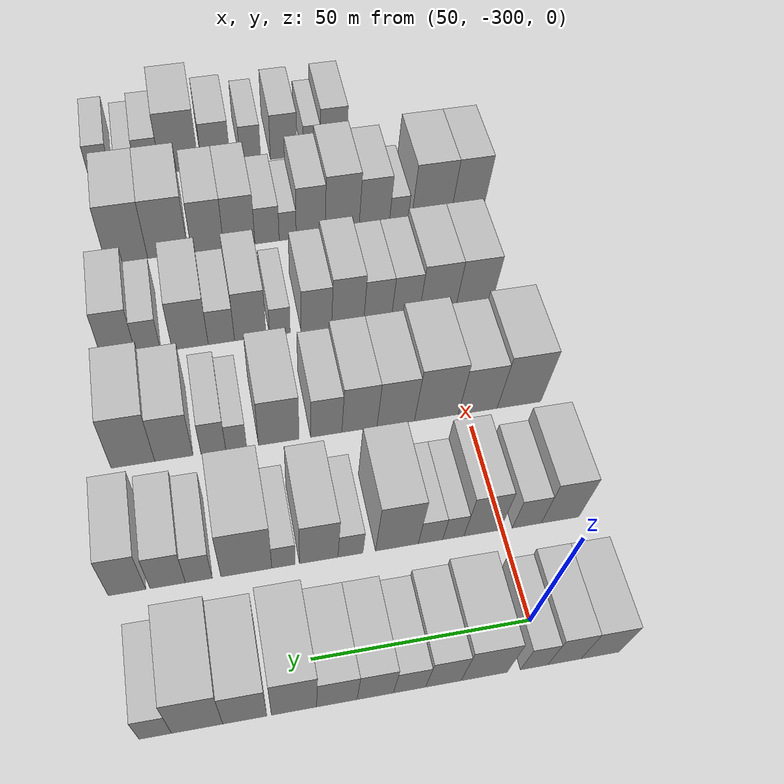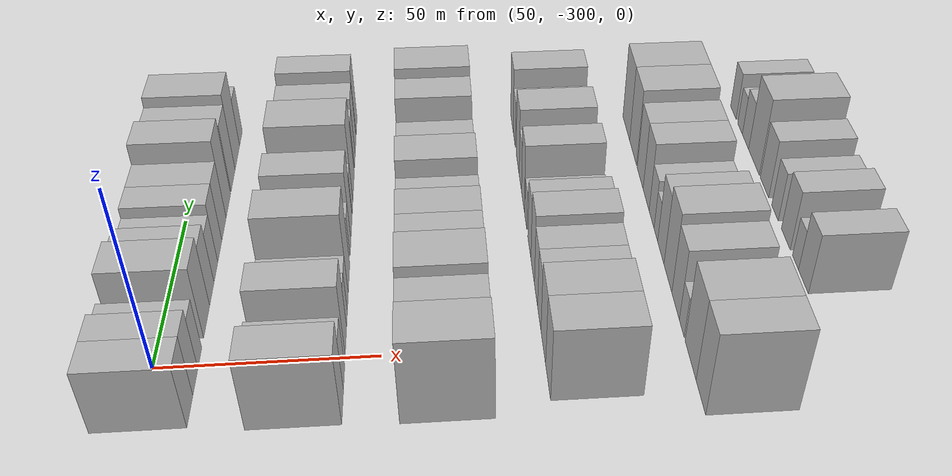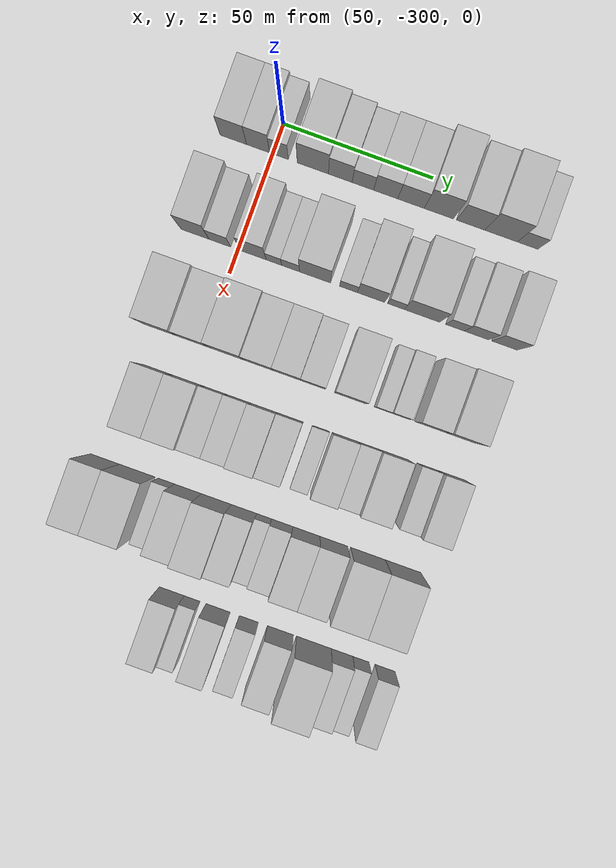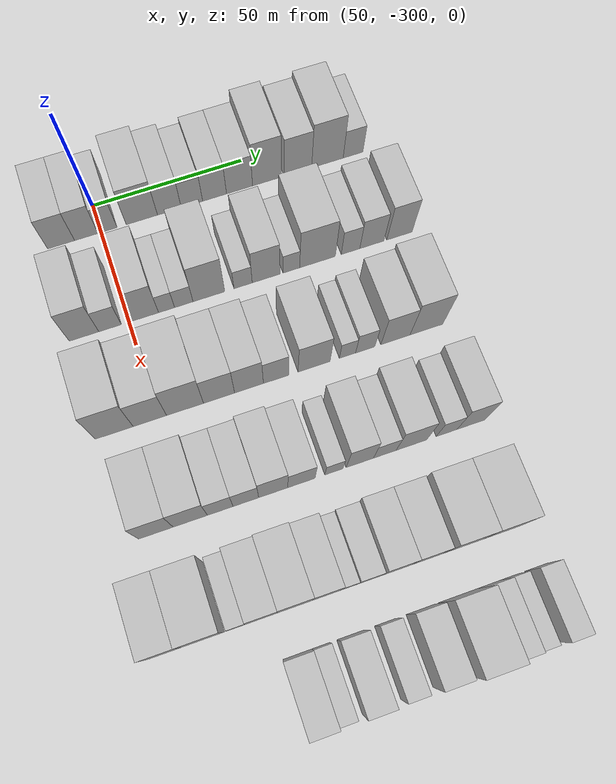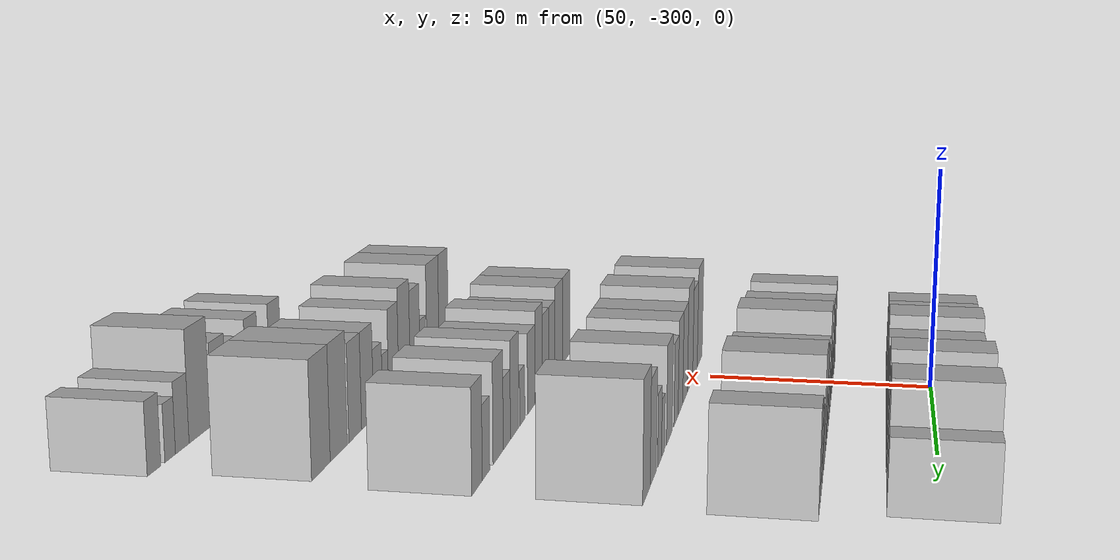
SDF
<sdf version="1.6">
 <world name="default">
  <model name="building_26">
   <static>1</static>
   <pose>50.0000 -313.0401 0 0.000000 0.000000 0.000000</pose>
   <link name="link">
    <pose>0 0 9.00 0 0 0</pose>
    <collision name="collision"><geometry><box><size>20.0000 8.7914 18.0000</size></box></geometry></collision>
    <visual name="visual">
     <cast_shadows>0</cast_shadows>
     <geometry><box><size>20.0000 8.7914 18.0000</size></box></geometry>
     <material>
      <script>
       <uri>model://HANNAS_wall/materials/scripts</uri>
       <uri>model://HANNAS_wall/materials/textures</uri>
       <name>vrc/HANNAS_wall</name>
      </script>
     </material>
    </visual>
   </link>
  </model>
  <model name="building_27">
   <static>1</static>
   <pose>50.0000 -304.8057 0 0.000000 0.000000 0.000000</pose>
   <link name="link">
    <pose>0 0 9.00 0 0 0</pose>
    <collision name="collision"><geometry><box><size>20.0000 7.6775 18.0000</size></box></geometry></collision>
    <visual name="visual">
     <cast_shadows>0</cast_shadows>
     <geometry><box><size>20.0000 7.6775 18.0000</size></box></geometry>
     <material>
      <script>
       <uri>model://HANNAS_wall/materials/scripts</uri>
       <uri>model://HANNAS_wall/materials/textures</uri>
       <name>vrc/HANNAS_wall</name>
      </script>
     </material>
    </visual>
   </link>
  </model>
  <model name="building_28">
   <static>1</static>
   <pose>50.0000 -297.8508 0 0.000000 0.000000 0.000000</pose>
   <link name="link">
    <pose>0 0 7.50 0 0 0</pose>
    <collision name="collision"><geometry><box><size>20.0000 6.2323 15.0000</size></box></geometry></collision>
    <visual name="visual">
     <cast_shadows>0</cast_shadows>
     <geometry><box><size>20.0000 6.2323 15.0000</size></box></geometry>
     <material>
      <script>
       <uri>model://HANNAS_wall/materials/scripts</uri>
       <uri>model://HANNAS_wall/materials/textures</uri>
       <name>vrc/HANNAS_wall</name>
      </script>
     </material>
    </visual>
   </link>
  </model>
  <model name="building_29">
   <static>1</static>
   <pose>50.0000 -286.5448 0 0.000000 0.000000 0.000000</pose>
   <link name="link">
    <pose>0 0 10.50 0 0 0</pose>
    <collision name="collision"><geometry><box><size>20.0000 10.3797 21.0000</size></box></geometry></collision>
    <visual name="visual">
     <cast_shadows>0</cast_shadows>
     <geometry><box><size>20.0000 10.3797 21.0000</size></box></geometry>
     <material>
      <script>
       <uri>model://HANNAS_wall/materials/scripts</uri>
       <uri>model://HANNAS_wall/materials/textures</uri>
       <name>vrc/HANNAS_wall</name>
      </script>
     </material>
    </visual>
   </link>
  </model>
  <model name="building_30">
   <static>1</static>
   <pose>50.0000 -277.3903 0 0.000000 0.000000 0.000000</pose>
   <link name="link">
    <pose>0 0 9.00 0 0 0</pose>
    <collision name="collision"><geometry><box><size>20.0000 7.9294 18.0000</size></box></geometry></collision>
    <visual name="visual">
     <cast_shadows>0</cast_shadows>
     <geometry><box><size>20.0000 7.9294 18.0000</size></box></geometry>
     <material>
      <script>
       <uri>model://HANNAS_wall/materials/scripts</uri>
       <uri>model://HANNAS_wall/materials/textures</uri>
       <name>vrc/HANNAS_wall</name>
      </script>
     </material>
    </visual>
   </link>
  </model>
  <model name="building_31">
   <static>1</static>
   <pose>50.0000 -269.8469 0 0.000000 0.000000 0.000000</pose>
   <link name="link">
    <pose>0 0 7.50 0 0 0</pose>
    <collision name="collision"><geometry><box><size>20.0000 7.1575 15.0000</size></box></geometry></collision>
    <visual name="visual">
     <cast_shadows>0</cast_shadows>
     <geometry><box><size>20.0000 7.1575 15.0000</size></box></geometry>
     <material>
      <script>
       <uri>model://HANNAS_wall/materials/scripts</uri>
       <uri>model://HANNAS_wall/materials/textures</uri>
       <name>vrc/HANNAS_wall</name>
      </script>
     </material>
    </visual>
   </link>
  </model>
  <model name="building_32">
   <static>1</static>
   <pose>50.0000 -262.2515 0 0.000000 0.000000 0.000000</pose>
   <link name="link">
    <pose>0 0 9.00 0 0 0</pose>
    <collision name="collision"><geometry><box><size>20.0000 8.0332 18.0000</size></box></geometry></collision>
    <visual name="visual">
     <cast_shadows>0</cast_shadows>
     <geometry><box><size>20.0000 8.0332 18.0000</size></box></geometry>
     <material>
      <script>
       <uri>model://HANNAS_wall/materials/scripts</uri>
       <uri>model://HANNAS_wall/materials/textures</uri>
       <name>vrc/HANNAS_wall</name>
      </script>
     </material>
    </visual>
   </link>
  </model>
  <model name="building_33">
   <static>1</static>
   <pose>50.0000 -253.8243 0 0.000000 0.000000 0.000000</pose>
   <link name="link">
    <pose>0 0 9.00 0 0 0</pose>
    <collision name="collision"><geometry><box><size>20.0000 8.8211 18.0000</size></box></geometry></collision>
    <visual name="visual">
     <cast_shadows>0</cast_shadows>
     <geometry><box><size>20.0000 8.8211 18.0000</size></box></geometry>
     <material>
      <script>
       <uri>model://HANNAS_wall/materials/scripts</uri>
       <uri>model://HANNAS_wall/materials/textures</uri>
       <name>vrc/HANNAS_wall</name>
      </script>
     </material>
    </visual>
   </link>
  </model>
  <model name="building_34">
   <static>1</static>
   <pose>50.0000 -244.5286 0 0.000000 0.000000 0.000000</pose>
   <link name="link">
    <pose>0 0 12.00 0 0 0</pose>
    <collision name="collision"><geometry><box><size>20.0000 9.7702 24.0000</size></box></geometry></collision>
    <visual name="visual">
     <cast_shadows>0</cast_shadows>
     <geometry><box><size>20.0000 9.7702 24.0000</size></box></geometry>
     <material>
      <script>
       <uri>model://HANNAS_wall/materials/scripts</uri>
       <uri>model://HANNAS_wall/materials/textures</uri>
       <name>vrc/HANNAS_wall</name>
      </script>
     </material>
    </visual>
   </link>
  </model>
  <model name="building_35">
   <static>1</static>
   <pose>50.0000 -233.9191 0 0.000000 0.000000 0.000000</pose>
   <link name="link">
    <pose>0 0 10.50 0 0 0</pose>
    <collision name="collision"><geometry><box><size>20.0000 9.4488 21.0000</size></box></geometry></collision>
    <visual name="visual">
     <cast_shadows>0</cast_shadows>
     <geometry><box><size>20.0000 9.4488 21.0000</size></box></geometry>
     <material>
      <script>
       <uri>model://HANNAS_wall/materials/scripts</uri>
       <uri>model://HANNAS_wall/materials/textures</uri>
       <name>vrc/HANNAS_wall</name>
      </script>
     </material>
    </visual>
   </link>
  </model>
  <model name="building_36">
   <static>1</static>
   <pose>50.0000 -223.7464 0 0.000000 0.000000 0.000000</pose>
   <link name="link">
    <pose>0 0 12.00 0 0 0</pose>
    <collision name="collision"><geometry><box><size>20.0000 10.8966 24.0000</size></box></geometry></collision>
    <visual name="visual">
     <cast_shadows>0</cast_shadows>
     <geometry><box><size>20.0000 10.8966 24.0000</size></box></geometry>
     <material>
      <script>
       <uri>model://HANNAS_wall/materials/scripts</uri>
       <uri>model://HANNAS_wall/materials/textures</uri>
       <name>vrc/HANNAS_wall</name>
      </script>
     </material>
    </visual>
   </link>
  </model>
  <model name="building_37">
   <static>1</static>
   <pose>50.0000 -214.8736 0 0.000000 0.000000 0.000000</pose>
   <link name="link">
    <pose>0 0 7.50 0 0 0</pose>
    <collision name="collision"><geometry><box><size>20.0000 6.8491 15.0000</size></box></geometry></collision>
    <visual name="visual">
     <cast_shadows>0</cast_shadows>
     <geometry><box><size>20.0000 6.8491 15.0000</size></box></geometry>
     <material>
      <script>
       <uri>model://HANNAS_wall/materials/scripts</uri>
       <uri>model://HANNAS_wall/materials/textures</uri>
       <name>vrc/HANNAS_wall</name>
      </script>
     </material>
    </visual>
   </link>
  </model>
  <model name="building_144">
   <static>1</static>
   <pose>82.0000 -314.2219 0 0.000000 0.000000 0.000000</pose>
   <link name="link">
    <pose>0 0 10.50 0 0 0</pose>
    <collision name="collision"><geometry><box><size>20.0000 9.3379 21.0000</size></box></geometry></collision>
    <visual name="visual">
     <cast_shadows>0</cast_shadows>
     <geometry><box><size>20.0000 9.3379 21.0000</size></box></geometry>
     <material>
      <script>
       <uri>model://HANNAS_wall/materials/scripts</uri>
       <uri>model://HANNAS_wall/materials/textures</uri>
       <name>vrc/HANNAS_wall</name>
      </script>
     </material>
    </visual>
   </link>
  </model>
  <model name="building_145">
   <static>1</static>
   <pose>82.0000 -305.9762 0 0.000000 0.000000 0.000000</pose>
   <link name="link">
    <pose>0 0 7.50 0 0 0</pose>
    <collision name="collision"><geometry><box><size>20.0000 7.1535 15.0000</size></box></geometry></collision>
    <visual name="visual">
     <cast_shadows>0</cast_shadows>
     <geometry><box><size>20.0000 7.1535 15.0000</size></box></geometry>
     <material>
      <script>
       <uri>model://HANNAS_wall/materials/scripts</uri>
       <uri>model://HANNAS_wall/materials/textures</uri>
       <name>vrc/HANNAS_wall</name>
      </script>
     </material>
    </visual>
   </link>
  </model>
  <model name="building_146">
   <static>1</static>
   <pose>82.0000 -294.9641 0 0.000000 0.000000 0.000000</pose>
   <link name="link">
    <pose>0 0 10.50 0 0 0</pose>
    <collision name="collision"><geometry><box><size>20.0000 8.8707 21.0000</size></box></geometry></collision>
    <visual name="visual">
     <cast_shadows>0</cast_shadows>
     <geometry><box><size>20.0000 8.8707 21.0000</size></box></geometry>
     <material>
      <script>
       <uri>model://HANNAS_wall/materials/scripts</uri>
       <uri>model://HANNAS_wall/materials/textures</uri>
       <name>vrc/HANNAS_wall</name>
      </script>
     </material>
    </visual>
   </link>
  </model>
  <model name="building_147">
   <static>1</static>
   <pose>82.0000 -287.9589 0 0.000000 0.000000 0.000000</pose>
   <link name="link">
    <pose>0 0 6.00 0 0 0</pose>
    <collision name="collision"><geometry><box><size>20.0000 5.1397 12.0000</size></box></geometry></collision>
    <visual name="visual">
     <cast_shadows>0</cast_shadows>
     <geometry><box><size>20.0000 5.1397 12.0000</size></box></geometry>
     <material>
      <script>
       <uri>model://HANNAS_wall/materials/scripts</uri>
       <uri>model://HANNAS_wall/materials/textures</uri>
       <name>vrc/HANNAS_wall</name>
      </script>
     </material>
    </visual>
   </link>
  </model>
  <model name="building_148">
   <static>1</static>
   <pose>82.0000 -282.4170 0 0.000000 0.000000 0.000000</pose>
   <link name="link">
    <pose>0 0 6.00 0 0 0</pose>
    <collision name="collision"><geometry><box><size>20.0000 5.9440 12.0000</size></box></geometry></collision>
    <visual name="visual">
     <cast_shadows>0</cast_shadows>
     <geometry><box><size>20.0000 5.9440 12.0000</size></box></geometry>
     <material>
      <script>
       <uri>model://HANNAS_wall/materials/scripts</uri>
       <uri>model://HANNAS_wall/materials/textures</uri>
       <name>vrc/HANNAS_wall</name>
      </script>
     </material>
    </visual>
   </link>
  </model>
  <model name="building_149">
   <static>1</static>
   <pose>82.0000 -274.2981 0 0.000000 0.000000 0.000000</pose>
   <link name="link">
    <pose>0 0 12.00 0 0 0</pose>
    <collision name="collision"><geometry><box><size>20.0000 10.2938 24.0000</size></box></geometry></collision>
    <visual name="visual">
     <cast_shadows>0</cast_shadows>
     <geometry><box><size>20.0000 10.2938 24.0000</size></box></geometry>
     <material>
      <script>
       <uri>model://HANNAS_wall/materials/scripts</uri>
       <uri>model://HANNAS_wall/materials/textures</uri>
       <name>vrc/HANNAS_wall</name>
      </script>
     </material>
    </visual>
   </link>
  </model>
  <model name="building_150">
   <static>1</static>
   <pose>82.0000 -263.1757 0 0.000000 0.000000 0.000000</pose>
   <link name="link">
    <pose>0 0 6.00 0 0 0</pose>
    <collision name="collision"><geometry><box><size>20.0000 5.9511 12.0000</size></box></geometry></collision>
    <visual name="visual">
     <cast_shadows>0</cast_shadows>
     <geometry><box><size>20.0000 5.9511 12.0000</size></box></geometry>
     <material>
      <script>
       <uri>model://HANNAS_wall/materials/scripts</uri>
       <uri>model://HANNAS_wall/materials/textures</uri>
       <name>vrc/HANNAS_wall</name>
      </script>
     </material>
    </visual>
   </link>
  </model>
  <model name="building_151">
   <static>1</static>
   <pose>82.0000 -255.6423 0 0.000000 0.000000 0.000000</pose>
   <link name="link">
    <pose>0 0 10.50 0 0 0</pose>
    <collision name="collision"><geometry><box><size>20.0000 9.1157 21.0000</size></box></geometry></collision>
    <visual name="visual">
     <cast_shadows>0</cast_shadows>
     <geometry><box><size>20.0000 9.1157 21.0000</size></box></geometry>
     <material>
      <script>
       <uri>model://HANNAS_wall/materials/scripts</uri>
       <uri>model://HANNAS_wall/materials/textures</uri>
       <name>vrc/HANNAS_wall</name>
      </script>
     </material>
    </visual>
   </link>
  </model>
  <model name="building_152">
   <static>1</static>
   <pose>82.0000 -247.3412 0 0.000000 0.000000 0.000000</pose>
   <link name="link">
    <pose>0 0 6.00 0 0 0</pose>
    <collision name="collision"><geometry><box><size>20.0000 5.4866 12.0000</size></box></geometry></collision>
    <visual name="visual">
     <cast_shadows>0</cast_shadows>
     <geometry><box><size>20.0000 5.4866 12.0000</size></box></geometry>
     <material>
      <script>
       <uri>model://HANNAS_wall/materials/scripts</uri>
       <uri>model://HANNAS_wall/materials/textures</uri>
       <name>vrc/HANNAS_wall</name>
      </script>
     </material>
    </visual>
   </link>
  </model>
  <model name="building_153">
   <static>1</static>
   <pose>82.0000 -238.6606 0 0.000000 0.000000 0.000000</pose>
   <link name="link">
    <pose>0 0 12.00 0 0 0</pose>
    <collision name="collision"><geometry><box><size>20.0000 11.8746 24.0000</size></box></geometry></collision>
    <visual name="visual">
     <cast_shadows>0</cast_shadows>
     <geometry><box><size>20.0000 11.8746 24.0000</size></box></geometry>
     <material>
      <script>
       <uri>model://HANNAS_wall/materials/scripts</uri>
       <uri>model://HANNAS_wall/materials/textures</uri>
       <name>vrc/HANNAS_wall</name>
      </script>
     </material>
    </visual>
   </link>
  </model>
  <model name="building_154">
   <static>1</static>
   <pose>82.0000 -227.6185 0 0.000000 0.000000 0.000000</pose>
   <link name="link">
    <pose>0 0 7.50 0 0 0</pose>
    <collision name="collision"><geometry><box><size>20.0000 6.2097 15.0000</size></box></geometry></collision>
    <visual name="visual">
     <cast_shadows>0</cast_shadows>
     <geometry><box><size>20.0000 6.2097 15.0000</size></box></geometry>
     <material>
      <script>
       <uri>model://HANNAS_wall/materials/scripts</uri>
       <uri>model://HANNAS_wall/materials/textures</uri>
       <name>vrc/HANNAS_wall</name>
      </script>
     </material>
    </visual>
   </link>
  </model>
  <model name="building_155">
   <static>1</static>
   <pose>82.0000 -220.4523 0 0.000000 0.000000 0.000000</pose>
   <link name="link">
    <pose>0 0 9.00 0 0 0</pose>
    <collision name="collision"><geometry><box><size>20.0000 8.1227 18.0000</size></box></geometry></collision>
    <visual name="visual">
     <cast_shadows>0</cast_shadows>
     <geometry><box><size>20.0000 8.1227 18.0000</size></box></geometry>
     <material>
      <script>
       <uri>model://HANNAS_wall/materials/scripts</uri>
       <uri>model://HANNAS_wall/materials/textures</uri>
       <name>vrc/HANNAS_wall</name>
      </script>
     </material>
    </visual>
   </link>
  </model>
  <model name="building_156">
   <static>1</static>
   <pose>82.0000 -211.1145 0 0.000000 0.000000 0.000000</pose>
   <link name="link">
    <pose>0 0 10.50 0 0 0</pose>
    <collision name="collision"><geometry><box><size>20.0000 8.5530 21.0000</size></box></geometry></collision>
    <visual name="visual">
     <cast_shadows>0</cast_shadows>
     <geometry><box><size>20.0000 8.5530 21.0000</size></box></geometry>
     <material>
      <script>
       <uri>model://HANNAS_wall/materials/scripts</uri>
       <uri>model://HANNAS_wall/materials/textures</uri>
       <name>vrc/HANNAS_wall</name>
      </script>
     </material>
    </visual>
   </link>
  </model>
  <model name="building_260">
   <static>1</static>
   <pose>114.0000 -313.6977 0 0.000000 0.000000 0.000000</pose>
   <link name="link">
    <pose>0 0 12.00 0 0 0</pose>
    <collision name="collision"><geometry><box><size>20.0000 11.6244 24.0000</size></box></geometry></collision>
    <visual name="visual">
     <cast_shadows>0</cast_shadows>
     <geometry><box><size>20.0000 11.6244 24.0000</size></box></geometry>
     <material>
      <script>
       <uri>model://HANNAS_wall/materials/scripts</uri>
       <uri>model://HANNAS_wall/materials/textures</uri>
       <name>vrc/HANNAS_wall</name>
      </script>
     </material>
    </visual>
   </link>
  </model>
  <model name="building_261">
   <static>1</static>
   <pose>114.0000 -302.7366 0 0.000000 0.000000 0.000000</pose>
   <link name="link">
    <pose>0 0 10.50 0 0 0</pose>
    <collision name="collision"><geometry><box><size>20.0000 10.2979 21.0000</size></box></geometry></collision>
    <visual name="visual">
     <cast_shadows>0</cast_shadows>
     <geometry><box><size>20.0000 10.2979 21.0000</size></box></geometry>
     <material>
      <script>
       <uri>model://HANNAS_wall/materials/scripts</uri>
       <uri>model://HANNAS_wall/materials/textures</uri>
       <name>vrc/HANNAS_wall</name>
      </script>
     </material>
    </visual>
   </link>
  </model>
  <model name="building_262">
   <static>1</static>
   <pose>114.0000 -291.8540 0 0.000000 0.000000 0.000000</pose>
   <link name="link">
    <pose>0 0 12.00 0 0 0</pose>
    <collision name="collision"><geometry><box><size>20.0000 11.4673 24.0000</size></box></geometry></collision>
    <visual name="visual">
     <cast_shadows>0</cast_shadows>
     <geometry><box><size>20.0000 11.4673 24.0000</size></box></geometry>
     <material>
      <script>
       <uri>model://HANNAS_wall/materials/scripts</uri>
       <uri>model://HANNAS_wall/materials/textures</uri>
       <name>vrc/HANNAS_wall</name>
      </script>
     </material>
    </visual>
   </link>
  </model>
  <model name="building_263">
   <static>1</static>
   <pose>114.0000 -281.2563 0 0.000000 0.000000 0.000000</pose>
   <link name="link">
    <pose>0 0 10.50 0 0 0</pose>
    <collision name="collision"><geometry><box><size>20.0000 9.7279 21.0000</size></box></geometry></collision>
    <visual name="visual">
     <cast_shadows>0</cast_shadows>
     <geometry><box><size>20.0000 9.7279 21.0000</size></box></geometry>
     <material>
      <script>
       <uri>model://HANNAS_wall/materials/scripts</uri>
       <uri>model://HANNAS_wall/materials/textures</uri>
       <name>vrc/HANNAS_wall</name>
      </script>
     </material>
    </visual>
   </link>
  </model>
  <model name="building_264">
   <static>1</static>
   <pose>114.0000 -271.8662 0 0.000000 0.000000 0.000000</pose>
   <link name="link">
    <pose>0 0 10.50 0 0 0</pose>
    <collision name="collision"><geometry><box><size>20.0000 9.0525 21.0000</size></box></geometry></collision>
    <visual name="visual">
     <cast_shadows>0</cast_shadows>
     <geometry><box><size>20.0000 9.0525 21.0000</size></box></geometry>
     <material>
      <script>
       <uri>model://HANNAS_wall/materials/scripts</uri>
       <uri>model://HANNAS_wall/materials/textures</uri>
       <name>vrc/HANNAS_wall</name>
      </script>
     </material>
    </visual>
   </link>
  </model>
  <model name="building_265">
   <static>1</static>
   <pose>114.0000 -263.3411 0 0.000000 0.000000 0.000000</pose>
   <link name="link">
    <pose>0 0 9.00 0 0 0</pose>
    <collision name="collision"><geometry><box><size>20.0000 7.9977 18.0000</size></box></geometry></collision>
    <visual name="visual">
     <cast_shadows>0</cast_shadows>
     <geometry><box><size>20.0000 7.9977 18.0000</size></box></geometry>
     <material>
      <script>
       <uri>model://HANNAS_wall/materials/scripts</uri>
       <uri>model://HANNAS_wall/materials/textures</uri>
       <name>vrc/HANNAS_wall</name>
      </script>
     </material>
    </visual>
   </link>
  </model>
  <model name="building_266">
   <static>1</static>
   <pose>114.0000 -251.2169 0 0.000000 0.000000 0.000000</pose>
   <link name="link">
    <pose>0 0 10.50 0 0 0</pose>
    <collision name="collision"><geometry><box><size>20.0000 10.2506 21.0000</size></box></geometry></collision>
    <visual name="visual">
     <cast_shadows>0</cast_shadows>
     <geometry><box><size>20.0000 10.2506 21.0000</size></box></geometry>
     <material>
      <script>
       <uri>model://HANNAS_wall/materials/scripts</uri>
       <uri>model://HANNAS_wall/materials/textures</uri>
       <name>vrc/HANNAS_wall</name>
      </script>
     </material>
    </visual>
   </link>
  </model>
  <model name="building_267">
   <static>1</static>
   <pose>114.0000 -240.4809 0 0.000000 0.000000 0.000000</pose>
   <link name="link">
    <pose>0 0 6.00 0 0 0</pose>
    <collision name="collision"><geometry><box><size>20.0000 5.2215 12.0000</size></box></geometry></collision>
    <visual name="visual">
     <cast_shadows>0</cast_shadows>
     <geometry><box><size>20.0000 5.2215 12.0000</size></box></geometry>
     <material>
      <script>
       <uri>model://HANNAS_wall/materials/scripts</uri>
       <uri>model://HANNAS_wall/materials/textures</uri>
       <name>vrc/HANNAS_wall</name>
      </script>
     </material>
    </visual>
   </link>
  </model>
  <model name="building_268">
   <static>1</static>
   <pose>114.0000 -234.7616 0 0.000000 0.000000 0.000000</pose>
   <link name="link">
    <pose>0 0 7.50 0 0 0</pose>
    <collision name="collision"><geometry><box><size>20.0000 6.2170 15.0000</size></box></geometry></collision>
    <visual name="visual">
     <cast_shadows>0</cast_shadows>
     <geometry><box><size>20.0000 6.2170 15.0000</size></box></geometry>
     <material>
      <script>
       <uri>model://HANNAS_wall/materials/scripts</uri>
       <uri>model://HANNAS_wall/materials/textures</uri>
       <name>vrc/HANNAS_wall</name>
      </script>
     </material>
    </visual>
   </link>
  </model>
  <model name="building_269">
   <static>1</static>
   <pose>114.0000 -224.9014 0 0.000000 0.000000 0.000000</pose>
   <link name="link">
    <pose>0 0 10.50 0 0 0</pose>
    <collision name="collision"><geometry><box><size>20.0000 9.5034 21.0000</size></box></geometry></collision>
    <visual name="visual">
     <cast_shadows>0</cast_shadows>
     <geometry><box><size>20.0000 9.5034 21.0000</size></box></geometry>
     <material>
      <script>
       <uri>model://HANNAS_wall/materials/scripts</uri>
       <uri>model://HANNAS_wall/materials/textures</uri>
       <name>vrc/HANNAS_wall</name>
      </script>
     </material>
    </visual>
   </link>
  </model>
  <model name="building_270">
   <static>1</static>
   <pose>114.0000 -214.7660 0 0.000000 0.000000 0.000000</pose>
   <link name="link">
    <pose>0 0 12.00 0 0 0</pose>
    <collision name="collision"><geometry><box><size>20.0000 10.7674 24.0000</size></box></geometry></collision>
    <visual name="visual">
     <cast_shadows>0</cast_shadows>
     <geometry><box><size>20.0000 10.7674 24.0000</size></box></geometry>
     <material>
      <script>
       <uri>model://HANNAS_wall/materials/scripts</uri>
       <uri>model://HANNAS_wall/materials/textures</uri>
       <name>vrc/HANNAS_wall</name>
      </script>
     </material>
    </visual>
   </link>
  </model>
  <model name="building_362">
   <static>1</static>
   <pose>146.0000 -310.3748 0 0.000000 0.000000 0.000000</pose>
   <link name="link">
    <pose>0 0 10.50 0 0 0</pose>
    <collision name="collision"><geometry><box><size>20.0000 10.2754 21.0000</size></box></geometry></collision>
    <visual name="visual">
     <cast_shadows>0</cast_shadows>
     <geometry><box><size>20.0000 10.2754 21.0000</size></box></geometry>
     <material>
      <script>
       <uri>model://HANNAS_wall/materials/scripts</uri>
       <uri>model://HANNAS_wall/materials/textures</uri>
       <name>vrc/HANNAS_wall</name>
      </script>
     </material>
    </visual>
   </link>
  </model>
  <model name="building_363">
   <static>1</static>
   <pose>146.0000 -300.1262 0 0.000000 0.000000 0.000000</pose>
   <link name="link">
    <pose>0 0 10.50 0 0 0</pose>
    <collision name="collision"><geometry><box><size>20.0000 10.2217 21.0000</size></box></geometry></collision>
    <visual name="visual">
     <cast_shadows>0</cast_shadows>
     <geometry><box><size>20.0000 10.2217 21.0000</size></box></geometry>
     <material>
      <script>
       <uri>model://HANNAS_wall/materials/scripts</uri>
       <uri>model://HANNAS_wall/materials/textures</uri>
       <name>vrc/HANNAS_wall</name>
      </script>
     </material>
    </visual>
   </link>
  </model>
  <model name="building_364">
   <static>1</static>
   <pose>146.0000 -291.1533 0 0.000000 0.000000 0.000000</pose>
   <link name="link">
    <pose>0 0 9.00 0 0 0</pose>
    <collision name="collision"><geometry><box><size>20.0000 7.7240 18.0000</size></box></geometry></collision>
    <visual name="visual">
     <cast_shadows>0</cast_shadows>
     <geometry><box><size>20.0000 7.7240 18.0000</size></box></geometry>
     <material>
      <script>
       <uri>model://HANNAS_wall/materials/scripts</uri>
       <uri>model://HANNAS_wall/materials/textures</uri>
       <name>vrc/HANNAS_wall</name>
      </script>
     </material>
    </visual>
   </link>
  </model>
  <model name="building_365">
   <static>1</static>
   <pose>146.0000 -283.4234 0 0.000000 0.000000 0.000000</pose>
   <link name="link">
    <pose>0 0 9.00 0 0 0</pose>
    <collision name="collision"><geometry><box><size>20.0000 7.7359 18.0000</size></box></geometry></collision>
    <visual name="visual">
     <cast_shadows>0</cast_shadows>
     <geometry><box><size>20.0000 7.7359 18.0000</size></box></geometry>
     <material>
      <script>
       <uri>model://HANNAS_wall/materials/scripts</uri>
       <uri>model://HANNAS_wall/materials/textures</uri>
       <name>vrc/HANNAS_wall</name>
      </script>
     </material>
    </visual>
   </link>
  </model>
  <model name="building_366">
   <static>1</static>
   <pose>146.0000 -275.1281 0 0.000000 0.000000 0.000000</pose>
   <link name="link">
    <pose>0 0 10.50 0 0 0</pose>
    <collision name="collision"><geometry><box><size>20.0000 8.8546 21.0000</size></box></geometry></collision>
    <visual name="visual">
     <cast_shadows>0</cast_shadows>
     <geometry><box><size>20.0000 8.8546 21.0000</size></box></geometry>
     <material>
      <script>
       <uri>model://HANNAS_wall/materials/scripts</uri>
       <uri>model://HANNAS_wall/materials/textures</uri>
       <name>vrc/HANNAS_wall</name>
      </script>
     </material>
    </visual>
   </link>
  </model>
  <model name="building_367">
   <static>1</static>
   <pose>146.0000 -266.5201 0 0.000000 0.000000 0.000000</pose>
   <link name="link">
    <pose>0 0 9.00 0 0 0</pose>
    <collision name="collision"><geometry><box><size>20.0000 8.3615 18.0000</size></box></geometry></collision>
    <visual name="visual">
     <cast_shadows>0</cast_shadows>
     <geometry><box><size>20.0000 8.3615 18.0000</size></box></geometry>
     <material>
      <script>
       <uri>model://HANNAS_wall/materials/scripts</uri>
       <uri>model://HANNAS_wall/materials/textures</uri>
       <name>vrc/HANNAS_wall</name>
      </script>
     </material>
    </visual>
   </link>
  </model>
  <model name="building_368">
   <static>1</static>
   <pose>146.0000 -256.5459 0 0.000000 0.000000 0.000000</pose>
   <link name="link">
    <pose>0 0 6.00 0 0 0</pose>
    <collision name="collision"><geometry><box><size>20.0000 5.5869 12.0000</size></box></geometry></collision>
    <visual name="visual">
     <cast_shadows>0</cast_shadows>
     <geometry><box><size>20.0000 5.5869 12.0000</size></box></geometry>
     <material>
      <script>
       <uri>model://HANNAS_wall/materials/scripts</uri>
       <uri>model://HANNAS_wall/materials/textures</uri>
       <name>vrc/HANNAS_wall</name>
      </script>
     </material>
    </visual>
   </link>
  </model>
  <model name="building_369">
   <static>1</static>
   <pose>146.0000 -248.5032 0 0.000000 0.000000 0.000000</pose>
   <link name="link">
    <pose>0 0 10.50 0 0 0</pose>
    <collision name="collision"><geometry><box><size>20.0000 8.4985 21.0000</size></box></geometry></collision>
    <visual name="visual">
     <cast_shadows>0</cast_shadows>
     <geometry><box><size>20.0000 8.4985 21.0000</size></box></geometry>
     <material>
      <script>
       <uri>model://HANNAS_wall/materials/scripts</uri>
       <uri>model://HANNAS_wall/materials/textures</uri>
       <name>vrc/HANNAS_wall</name>
      </script>
     </material>
    </visual>
   </link>
  </model>
  <model name="building_370">
   <static>1</static>
   <pose>146.0000 -240.7117 0 0.000000 0.000000 0.000000</pose>
   <link name="link">
    <pose>0 0 7.50 0 0 0</pose>
    <collision name="collision"><geometry><box><size>20.0000 7.0846 15.0000</size></box></geometry></collision>
    <visual name="visual">
     <cast_shadows>0</cast_shadows>
     <geometry><box><size>20.0000 7.0846 15.0000</size></box></geometry>
     <material>
      <script>
       <uri>model://HANNAS_wall/materials/scripts</uri>
       <uri>model://HANNAS_wall/materials/textures</uri>
       <name>vrc/HANNAS_wall</name>
      </script>
     </material>
    </visual>
   </link>
  </model>
  <model name="building_371">
   <static>1</static>
   <pose>146.0000 -232.3244 0 0.000000 0.000000 0.000000</pose>
   <link name="link">
    <pose>0 0 10.50 0 0 0</pose>
    <collision name="collision"><geometry><box><size>20.0000 9.6901 21.0000</size></box></geometry></collision>
    <visual name="visual">
     <cast_shadows>0</cast_shadows>
     <geometry><box><size>20.0000 9.6901 21.0000</size></box></geometry>
     <material>
      <script>
       <uri>model://HANNAS_wall/materials/scripts</uri>
       <uri>model://HANNAS_wall/materials/textures</uri>
       <name>vrc/HANNAS_wall</name>
      </script>
     </material>
    </visual>
   </link>
  </model>
  <model name="building_372">
   <static>1</static>
   <pose>146.0000 -221.1708 0 0.000000 0.000000 0.000000</pose>
   <link name="link">
    <pose>0 0 7.50 0 0 0</pose>
    <collision name="collision"><geometry><box><size>20.0000 6.6171 15.0000</size></box></geometry></collision>
    <visual name="visual">
     <cast_shadows>0</cast_shadows>
     <geometry><box><size>20.0000 6.6171 15.0000</size></box></geometry>
     <material>
      <script>
       <uri>model://HANNAS_wall/materials/scripts</uri>
       <uri>model://HANNAS_wall/materials/textures</uri>
       <name>vrc/HANNAS_wall</name>
      </script>
     </material>
    </visual>
   </link>
  </model>
  <model name="building_373">
   <static>1</static>
   <pose>146.0000 -213.3752 0 0.000000 0.000000 0.000000</pose>
   <link name="link">
    <pose>0 0 10.50 0 0 0</pose>
    <collision name="collision"><geometry><box><size>20.0000 8.9741 21.0000</size></box></geometry></collision>
    <visual name="visual">
     <cast_shadows>0</cast_shadows>
     <geometry><box><size>20.0000 8.9741 21.0000</size></box></geometry>
     <material>
      <script>
       <uri>model://HANNAS_wall/materials/scripts</uri>
       <uri>model://HANNAS_wall/materials/textures</uri>
       <name>vrc/HANNAS_wall</name>
      </script>
     </material>
    </visual>
   </link>
  </model>
  <model name="building_478">
   <static>1</static>
   <pose>178.0000 -316.9623 0 0.000000 0.000000 0.000000</pose>
   <link name="link">
    <pose>0 0 12.00 0 0 0</pose>
    <collision name="collision"><geometry><box><size>20.0000 9.6856 24.0000</size></box></geometry></collision>
    <visual name="visual">
     <cast_shadows>0</cast_shadows>
     <geometry><box><size>20.0000 9.6856 24.0000</size></box></geometry>
     <material>
      <script>
       <uri>model://HANNAS_wall/materials/scripts</uri>
       <uri>model://HANNAS_wall/materials/textures</uri>
       <name>vrc/HANNAS_wall</name>
      </script>
     </material>
    </visual>
   </link>
  </model>
  <model name="building_479">
   <static>1</static>
   <pose>178.0000 -306.1847 0 0.000000 0.000000 0.000000</pose>
   <link name="link">
    <pose>0 0 12.00 0 0 0</pose>
    <collision name="collision"><geometry><box><size>20.0000 11.8694 24.0000</size></box></geometry></collision>
    <visual name="visual">
     <cast_shadows>0</cast_shadows>
     <geometry><box><size>20.0000 11.8694 24.0000</size></box></geometry>
     <material>
      <script>
       <uri>model://HANNAS_wall/materials/scripts</uri>
       <uri>model://HANNAS_wall/materials/textures</uri>
       <name>vrc/HANNAS_wall</name>
      </script>
     </material>
    </visual>
   </link>
  </model>
  <model name="building_480">
   <static>1</static>
   <pose>178.0000 -296.4812 0 0.000000 0.000000 0.000000</pose>
   <link name="link">
    <pose>0 0 6.00 0 0 0</pose>
    <collision name="collision"><geometry><box><size>20.0000 5.5377 12.0000</size></box></geometry></collision>
    <visual name="visual">
     <cast_shadows>0</cast_shadows>
     <geometry><box><size>20.0000 5.5377 12.0000</size></box></geometry>
     <material>
      <script>
       <uri>model://HANNAS_wall/materials/scripts</uri>
       <uri>model://HANNAS_wall/materials/textures</uri>
       <name>vrc/HANNAS_wall</name>
      </script>
     </material>
    </visual>
   </link>
  </model>
  <model name="building_481">
   <static>1</static>
   <pose>178.0000 -289.2358 0 0.000000 0.000000 0.000000</pose>
   <link name="link">
    <pose>0 0 10.50 0 0 0</pose>
    <collision name="collision"><geometry><box><size>20.0000 8.9531 21.0000</size></box></geometry></collision>
    <visual name="visual">
     <cast_shadows>0</cast_shadows>
     <geometry><box><size>20.0000 8.9531 21.0000</size></box></geometry>
     <material>
      <script>
       <uri>model://HANNAS_wall/materials/scripts</uri>
       <uri>model://HANNAS_wall/materials/textures</uri>
       <name>vrc/HANNAS_wall</name>
      </script>
     </material>
    </visual>
   </link>
  </model>
  <model name="building_482">
   <static>1</static>
   <pose>178.0000 -279.7600 0 0.000000 0.000000 0.000000</pose>
   <link name="link">
    <pose>0 0 12.00 0 0 0</pose>
    <collision name="collision"><geometry><box><size>20.0000 9.9984 24.0000</size></box></geometry></collision>
    <visual name="visual">
     <cast_shadows>0</cast_shadows>
     <geometry><box><size>20.0000 9.9984 24.0000</size></box></geometry>
     <material>
      <script>
       <uri>model://HANNAS_wall/materials/scripts</uri>
       <uri>model://HANNAS_wall/materials/textures</uri>
       <name>vrc/HANNAS_wall</name>
      </script>
     </material>
    </visual>
   </link>
  </model>
  <model name="building_483">
   <static>1</static>
   <pose>178.0000 -270.5320 0 0.000000 0.000000 0.000000</pose>
   <link name="link">
    <pose>0 0 10.50 0 0 0</pose>
    <collision name="collision"><geometry><box><size>20.0000 8.4575 21.0000</size></box></geometry></collision>
    <visual name="visual">
     <cast_shadows>0</cast_shadows>
     <geometry><box><size>20.0000 8.4575 21.0000</size></box></geometry>
     <material>
      <script>
       <uri>model://HANNAS_wall/materials/scripts</uri>
       <uri>model://HANNAS_wall/materials/textures</uri>
       <name>vrc/HANNAS_wall</name>
      </script>
     </material>
    </visual>
   </link>
  </model>
  <model name="building_484">
   <static>1</static>
   <pose>178.0000 -263.8284 0 0.000000 0.000000 0.000000</pose>
   <link name="link">
    <pose>0 0 6.00 0 0 0</pose>
    <collision name="collision"><geometry><box><size>20.0000 4.9498 12.0000</size></box></geometry></collision>
    <visual name="visual">
     <cast_shadows>0</cast_shadows>
     <geometry><box><size>20.0000 4.9498 12.0000</size></box></geometry>
     <material>
      <script>
       <uri>model://HANNAS_wall/materials/scripts</uri>
       <uri>model://HANNAS_wall/materials/textures</uri>
       <name>vrc/HANNAS_wall</name>
      </script>
     </material>
    </visual>
   </link>
  </model>
  <model name="building_485">
   <static>1</static>
   <pose>178.0000 -257.8368 0 0.000000 0.000000 0.000000</pose>
   <link name="link">
    <pose>0 0 7.50 0 0 0</pose>
    <collision name="collision"><geometry><box><size>20.0000 7.0333 15.0000</size></box></geometry></collision>
    <visual name="visual">
     <cast_shadows>0</cast_shadows>
     <geometry><box><size>20.0000 7.0333 15.0000</size></box></geometry>
     <material>
      <script>
       <uri>model://HANNAS_wall/materials/scripts</uri>
       <uri>model://HANNAS_wall/materials/textures</uri>
       <name>vrc/HANNAS_wall</name>
      </script>
     </material>
    </visual>
   </link>
  </model>
  <model name="building_486">
   <static>1</static>
   <pose>178.0000 -249.8114 0 0.000000 0.000000 0.000000</pose>
   <link name="link">
    <pose>0 0 10.50 0 0 0</pose>
    <collision name="collision"><geometry><box><size>20.0000 9.0174 21.0000</size></box></geometry></collision>
    <visual name="visual">
     <cast_shadows>0</cast_shadows>
     <geometry><box><size>20.0000 9.0174 21.0000</size></box></geometry>
     <material>
      <script>
       <uri>model://HANNAS_wall/materials/scripts</uri>
       <uri>model://HANNAS_wall/materials/textures</uri>
       <name>vrc/HANNAS_wall</name>
      </script>
     </material>
    </visual>
   </link>
  </model>
  <model name="building_487">
   <static>1</static>
   <pose>178.0000 -240.6952 0 0.000000 0.000000 0.000000</pose>
   <link name="link">
    <pose>0 0 10.50 0 0 0</pose>
    <collision name="collision"><geometry><box><size>20.0000 9.2151 21.0000</size></box></geometry></collision>
    <visual name="visual">
     <cast_shadows>0</cast_shadows>
     <geometry><box><size>20.0000 9.2151 21.0000</size></box></geometry>
     <material>
      <script>
       <uri>model://HANNAS_wall/materials/scripts</uri>
       <uri>model://HANNAS_wall/materials/textures</uri>
       <name>vrc/HANNAS_wall</name>
      </script>
     </material>
    </visual>
   </link>
  </model>
  <model name="building_488">
   <static>1</static>
   <pose>178.0000 -229.3125 0 0.000000 0.000000 0.000000</pose>
   <link name="link">
    <pose>0 0 12.00 0 0 0</pose>
    <collision name="collision"><geometry><box><size>20.0000 11.5503 24.0000</size></box></geometry></collision>
    <visual name="visual">
     <cast_shadows>0</cast_shadows>
     <geometry><box><size>20.0000 11.5503 24.0000</size></box></geometry>
     <material>
      <script>
       <uri>model://HANNAS_wall/materials/scripts</uri>
       <uri>model://HANNAS_wall/materials/textures</uri>
       <name>vrc/HANNAS_wall</name>
      </script>
     </material>
    </visual>
   </link>
  </model>
  <model name="building_489">
   <static>1</static>
   <pose>178.0000 -217.6250 0 0.000000 0.000000 0.000000</pose>
   <link name="link">
    <pose>0 0 12.00 0 0 0</pose>
    <collision name="collision"><geometry><box><size>20.0000 11.8246 24.0000</size></box></geometry></collision>
    <visual name="visual">
     <cast_shadows>0</cast_shadows>
     <geometry><box><size>20.0000 11.8246 24.0000</size></box></geometry>
     <material>
      <script>
       <uri>model://HANNAS_wall/materials/scripts</uri>
       <uri>model://HANNAS_wall/materials/textures</uri>
       <name>vrc/HANNAS_wall</name>
      </script>
     </material>
    </visual>
   </link>
  </model>
  <model name="building_599">
   <static>1</static>
   <pose>210.0000 -283.1869 0 0.000000 0.000000 0.000000</pose>
   <link name="link">
    <pose>0 0 9.00 0 0 0</pose>
    <collision name="collision"><geometry><box><size>20.0000 8.3134 18.0000</size></box></geometry></collision>
    <visual name="visual">
     <cast_shadows>0</cast_shadows>
     <geometry><box><size>20.0000 8.3134 18.0000</size></box></geometry>
     <material>
      <script>
       <uri>model://HANNAS_wall/materials/scripts</uri>
       <uri>model://HANNAS_wall/materials/textures</uri>
       <name>vrc/HANNAS_wall</name>
      </script>
     </material>
    </visual>
   </link>
  </model>
  <model name="building_600">
   <static>1</static>
   <pose>210.0000 -276.4063 0 0.000000 0.000000 0.000000</pose>
   <link name="link">
    <pose>0 0 6.00 0 0 0</pose>
    <collision name="collision"><geometry><box><size>20.0000 5.2477 12.0000</size></box></geometry></collision>
    <visual name="visual">
     <cast_shadows>0</cast_shadows>
     <geometry><box><size>20.0000 5.2477 12.0000</size></box></geometry>
     <material>
      <script>
       <uri>model://HANNAS_wall/materials/scripts</uri>
       <uri>model://HANNAS_wall/materials/textures</uri>
       <name>vrc/HANNAS_wall</name>
      </script>
     </material>
    </visual>
   </link>
  </model>
  <model name="building_601">
   <static>1</static>
   <pose>210.0000 -267.7252 0 0.000000 0.000000 0.000000</pose>
   <link name="link">
    <pose>0 0 9.00 0 0 0</pose>
    <collision name="collision"><geometry><box><size>20.0000 8.1145 18.0000</size></box></geometry></collision>
    <visual name="visual">
     <cast_shadows>0</cast_shadows>
     <geometry><box><size>20.0000 8.1145 18.0000</size></box></geometry>
     <material>
      <script>
       <uri>model://HANNAS_wall/materials/scripts</uri>
       <uri>model://HANNAS_wall/materials/textures</uri>
       <name>vrc/HANNAS_wall</name>
      </script>
     </material>
    </visual>
   </link>
  </model>
  <model name="building_602">
   <static>1</static>
   <pose>210.0000 -257.4883 0 0.000000 0.000000 0.000000</pose>
   <link name="link">
    <pose>0 0 7.50 0 0 0</pose>
    <collision name="collision"><geometry><box><size>20.0000 6.3595 15.0000</size></box></geometry></collision>
    <visual name="visual">
     <cast_shadows>0</cast_shadows>
     <geometry><box><size>20.0000 6.3595 15.0000</size></box></geometry>
     <material>
      <script>
       <uri>model://HANNAS_wall/materials/scripts</uri>
       <uri>model://HANNAS_wall/materials/textures</uri>
       <name>vrc/HANNAS_wall</name>
      </script>
     </material>
    </visual>
   </link>
  </model>
  <model name="building_603">
   <static>1</static>
   <pose>210.0000 -246.9714 0 0.000000 0.000000 0.000000</pose>
   <link name="link">
    <pose>0 0 9.00 0 0 0</pose>
    <collision name="collision"><geometry><box><size>20.0000 8.6742 18.0000</size></box></geometry></collision>
    <visual name="visual">
     <cast_shadows>0</cast_shadows>
     <geometry><box><size>20.0000 8.6742 18.0000</size></box></geometry>
     <material>
      <script>
       <uri>model://HANNAS_wall/materials/scripts</uri>
       <uri>model://HANNAS_wall/materials/textures</uri>
       <name>vrc/HANNAS_wall</name>
      </script>
     </material>
    </visual>
   </link>
  </model>
  <model name="building_604">
   <static>1</static>
   <pose>210.0000 -235.8237 0 0.000000 0.000000 0.000000</pose>
   <link name="link">
    <pose>0 0 12.00 0 0 0</pose>
    <collision name="collision"><geometry><box><size>20.0000 11.6211 24.0000</size></box></geometry></collision>
    <visual name="visual">
     <cast_shadows>0</cast_shadows>
     <geometry><box><size>20.0000 11.6211 24.0000</size></box></geometry>
     <material>
      <script>
       <uri>model://HANNAS_wall/materials/scripts</uri>
       <uri>model://HANNAS_wall/materials/textures</uri>
       <name>vrc/HANNAS_wall</name>
      </script>
     </material>
    </visual>
   </link>
  </model>
  <model name="building_605">
   <static>1</static>
   <pose>210.0000 -226.4241 0 0.000000 0.000000 0.000000</pose>
   <link name="link">
    <pose>0 0 7.50 0 0 0</pose>
    <collision name="collision"><geometry><box><size>20.0000 7.1781 15.0000</size></box></geometry></collision>
    <visual name="visual">
     <cast_shadows>0</cast_shadows>
     <geometry><box><size>20.0000 7.1781 15.0000</size></box></geometry>
     <material>
      <script>
       <uri>model://HANNAS_wall/materials/scripts</uri>
       <uri>model://HANNAS_wall/materials/textures</uri>
       <name>vrc/HANNAS_wall</name>
      </script>
     </material>
    </visual>
   </link>
  </model>
  <model name="building_606">
   <static>1</static>
   <pose>210.0000 -220.1212 0 0.000000 0.000000 0.000000</pose>
   <link name="link">
    <pose>0 0 6.00 0 0 0</pose>
    <collision name="collision"><geometry><box><size>20.0000 5.4277 12.0000</size></box></geometry></collision>
    <visual name="visual">
     <cast_shadows>0</cast_shadows>
     <geometry><box><size>20.0000 5.4277 12.0000</size></box></geometry>
     <material>
      <script>
       <uri>model://HANNAS_wall/materials/scripts</uri>
       <uri>model://HANNAS_wall/materials/textures</uri>
       <name>vrc/HANNAS_wall</name>
      </script>
     </material>
    </visual>
   </link>
  </model>
  <model name="building_607">
   <static>1</static>
   <pose>210.0000 -212.0822 0 0.000000 0.000000 0.000000</pose>
   <link name="link">
    <pose>0 0 7.50 0 0 0</pose>
    <collision name="collision"><geometry><box><size>20.0000 6.6503 15.0000</size></box></geometry></collision>
    <visual name="visual">
     <cast_shadows>0</cast_shadows>
     <geometry><box><size>20.0000 6.6503 15.0000</size></box></geometry>
     <material>
      <script>
       <uri>model://HANNAS_wall/materials/scripts</uri>
       <uri>model://HANNAS_wall/materials/textures</uri>
       <name>vrc/HANNAS_wall</name>
      </script>
     </material>
    </visual>
   </link>
  </model>
 </world>
</sdf>
